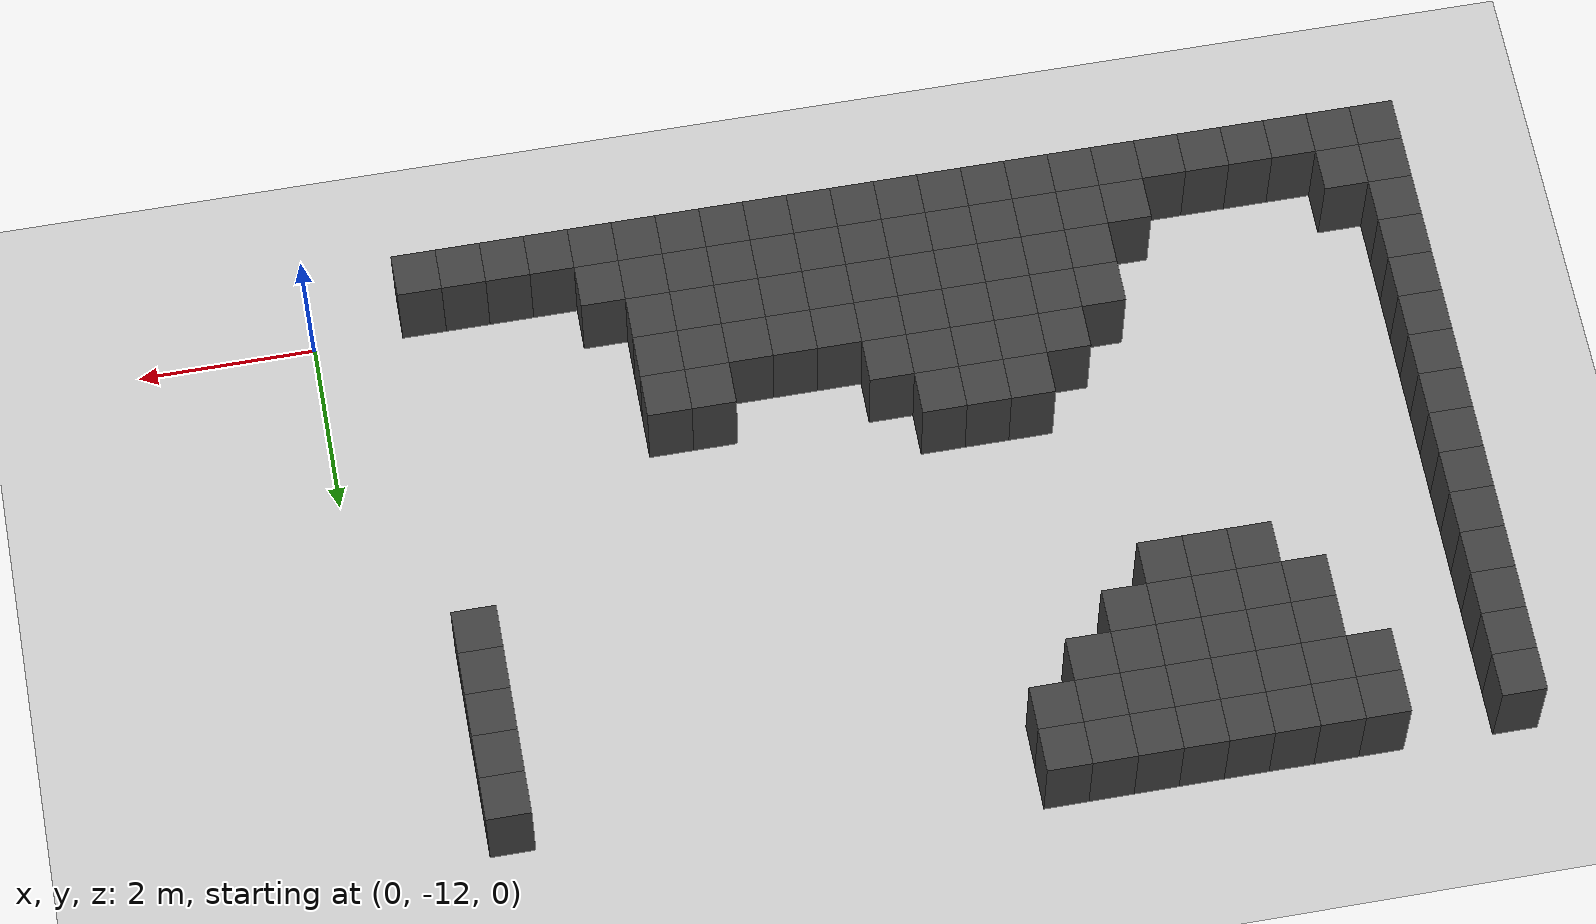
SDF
<sdf version="1.7">
 <world name="map_8074">
  <model name="ground_plane">
   <static>true</static>
   <link name="link">
    <collision name="collision">
     <geometry><plane><normal>0 0 1</normal><size>200 200</size></plane></geometry>
    </collision>
    <visual name="visual">
     <geometry><plane><normal>0 0 1</normal><size>200 200</size></plane></geometry>
     <material><ambient>0.8 0.8 0.8 1</ambient><diffuse>0.8 0.8 0.8 1</diffuse></material>
    </visual>
   </link>
  </model>
  <model name="maze_environment">
   <static>true</static>
   <link name="wall_593">
    <pose>-12.250 -5.250 0.500 0 0 0</pose>
    <collision name="col"><geometry><box><size>0.5 0.5 1.0</size></box></geometry></collision>
    <visual name="vis">
     <geometry><box><size>0.5 0.5 1.0</size></box></geometry>
     <material><ambient>0.15 0.15 0.15 1</ambient><diffuse>0.25 0.25 0.25 1</diffuse></material>
    </visual>
   </link>
   <link name="wall_594">
    <pose>-10.750 -5.250 0.500 0 0 0</pose>
    <collision name="col"><geometry><box><size>0.5 0.5 1.0</size></box></geometry></collision>
    <visual name="vis">
     <geometry><box><size>0.5 0.5 1.0</size></box></geometry>
     <material><ambient>0.15 0.15 0.15 1</ambient><diffuse>0.25 0.25 0.25 1</diffuse></material>
    </visual>
   </link>
   <link name="wall_595">
    <pose>-10.250 -5.250 0.500 0 0 0</pose>
    <collision name="col"><geometry><box><size>0.5 0.5 1.0</size></box></geometry></collision>
    <visual name="vis">
     <geometry><box><size>0.5 0.5 1.0</size></box></geometry>
     <material><ambient>0.15 0.15 0.15 1</ambient><diffuse>0.25 0.25 0.25 1</diffuse></material>
    </visual>
   </link>
   <link name="wall_596">
    <pose>-9.750 -5.250 0.500 0 0 0</pose>
    <collision name="col"><geometry><box><size>0.5 0.5 1.0</size></box></geometry></collision>
    <visual name="vis">
     <geometry><box><size>0.5 0.5 1.0</size></box></geometry>
     <material><ambient>0.15 0.15 0.15 1</ambient><diffuse>0.25 0.25 0.25 1</diffuse></material>
    </visual>
   </link>
   <link name="wall_597">
    <pose>-9.250 -5.250 0.500 0 0 0</pose>
    <collision name="col"><geometry><box><size>0.5 0.5 1.0</size></box></geometry></collision>
    <visual name="vis">
     <geometry><box><size>0.5 0.5 1.0</size></box></geometry>
     <material><ambient>0.15 0.15 0.15 1</ambient><diffuse>0.25 0.25 0.25 1</diffuse></material>
    </visual>
   </link>
   <link name="wall_598">
    <pose>-8.750 -5.250 0.500 0 0 0</pose>
    <collision name="col"><geometry><box><size>0.5 0.5 1.0</size></box></geometry></collision>
    <visual name="vis">
     <geometry><box><size>0.5 0.5 1.0</size></box></geometry>
     <material><ambient>0.15 0.15 0.15 1</ambient><diffuse>0.25 0.25 0.25 1</diffuse></material>
    </visual>
   </link>
   <link name="wall_599">
    <pose>-8.250 -5.250 0.500 0 0 0</pose>
    <collision name="col"><geometry><box><size>0.5 0.5 1.0</size></box></geometry></collision>
    <visual name="vis">
     <geometry><box><size>0.5 0.5 1.0</size></box></geometry>
     <material><ambient>0.15 0.15 0.15 1</ambient><diffuse>0.25 0.25 0.25 1</diffuse></material>
    </visual>
   </link>
   <link name="wall_600">
    <pose>-7.750 -5.250 0.500 0 0 0</pose>
    <collision name="col"><geometry><box><size>0.5 0.5 1.0</size></box></geometry></collision>
    <visual name="vis">
     <geometry><box><size>0.5 0.5 1.0</size></box></geometry>
     <material><ambient>0.15 0.15 0.15 1</ambient><diffuse>0.25 0.25 0.25 1</diffuse></material>
    </visual>
   </link>
   <link name="wall_601">
    <pose>-7.250 -5.250 0.500 0 0 0</pose>
    <collision name="col"><geometry><box><size>0.5 0.5 1.0</size></box></geometry></collision>
    <visual name="vis">
     <geometry><box><size>0.5 0.5 1.0</size></box></geometry>
     <material><ambient>0.15 0.15 0.15 1</ambient><diffuse>0.25 0.25 0.25 1</diffuse></material>
    </visual>
   </link>
   <link name="wall_610">
    <pose>-12.250 -5.750 0.500 0 0 0</pose>
    <collision name="col"><geometry><box><size>0.5 0.5 1.0</size></box></geometry></collision>
    <visual name="vis">
     <geometry><box><size>0.5 0.5 1.0</size></box></geometry>
     <material><ambient>0.15 0.15 0.15 1</ambient><diffuse>0.25 0.25 0.25 1</diffuse></material>
    </visual>
   </link>
   <link name="wall_611">
    <pose>-10.750 -5.750 0.500 0 0 0</pose>
    <collision name="col"><geometry><box><size>0.5 0.5 1.0</size></box></geometry></collision>
    <visual name="vis">
     <geometry><box><size>0.5 0.5 1.0</size></box></geometry>
     <material><ambient>0.15 0.15 0.15 1</ambient><diffuse>0.25 0.25 0.25 1</diffuse></material>
    </visual>
   </link>
   <link name="wall_612">
    <pose>-10.250 -5.750 0.500 0 0 0</pose>
    <collision name="col"><geometry><box><size>0.5 0.5 1.0</size></box></geometry></collision>
    <visual name="vis">
     <geometry><box><size>0.5 0.5 1.0</size></box></geometry>
     <material><ambient>0.15 0.15 0.15 1</ambient><diffuse>0.25 0.25 0.25 1</diffuse></material>
    </visual>
   </link>
   <link name="wall_613">
    <pose>-9.750 -5.750 0.500 0 0 0</pose>
    <collision name="col"><geometry><box><size>0.5 0.5 1.0</size></box></geometry></collision>
    <visual name="vis">
     <geometry><box><size>0.5 0.5 1.0</size></box></geometry>
     <material><ambient>0.15 0.15 0.15 1</ambient><diffuse>0.25 0.25 0.25 1</diffuse></material>
    </visual>
   </link>
   <link name="wall_614">
    <pose>-9.250 -5.750 0.500 0 0 0</pose>
    <collision name="col"><geometry><box><size>0.5 0.5 1.0</size></box></geometry></collision>
    <visual name="vis">
     <geometry><box><size>0.5 0.5 1.0</size></box></geometry>
     <material><ambient>0.15 0.15 0.15 1</ambient><diffuse>0.25 0.25 0.25 1</diffuse></material>
    </visual>
   </link>
   <link name="wall_615">
    <pose>-8.750 -5.750 0.500 0 0 0</pose>
    <collision name="col"><geometry><box><size>0.5 0.5 1.0</size></box></geometry></collision>
    <visual name="vis">
     <geometry><box><size>0.5 0.5 1.0</size></box></geometry>
     <material><ambient>0.15 0.15 0.15 1</ambient><diffuse>0.25 0.25 0.25 1</diffuse></material>
    </visual>
   </link>
   <link name="wall_616">
    <pose>-8.250 -5.750 0.500 0 0 0</pose>
    <collision name="col"><geometry><box><size>0.5 0.5 1.0</size></box></geometry></collision>
    <visual name="vis">
     <geometry><box><size>0.5 0.5 1.0</size></box></geometry>
     <material><ambient>0.15 0.15 0.15 1</ambient><diffuse>0.25 0.25 0.25 1</diffuse></material>
    </visual>
   </link>
   <link name="wall_617">
    <pose>-7.750 -5.750 0.500 0 0 0</pose>
    <collision name="col"><geometry><box><size>0.5 0.5 1.0</size></box></geometry></collision>
    <visual name="vis">
     <geometry><box><size>0.5 0.5 1.0</size></box></geometry>
     <material><ambient>0.15 0.15 0.15 1</ambient><diffuse>0.25 0.25 0.25 1</diffuse></material>
    </visual>
   </link>
   <link name="wall_618">
    <pose>-7.250 -5.750 0.500 0 0 0</pose>
    <collision name="col"><geometry><box><size>0.5 0.5 1.0</size></box></geometry></collision>
    <visual name="vis">
     <geometry><box><size>0.5 0.5 1.0</size></box></geometry>
     <material><ambient>0.15 0.15 0.15 1</ambient><diffuse>0.25 0.25 0.25 1</diffuse></material>
    </visual>
   </link>
   <link name="wall_619">
    <pose>-1.250 -5.750 0.500 0 0 0</pose>
    <collision name="col"><geometry><box><size>0.5 0.5 1.0</size></box></geometry></collision>
    <visual name="vis">
     <geometry><box><size>0.5 0.5 1.0</size></box></geometry>
     <material><ambient>0.15 0.15 0.15 1</ambient><diffuse>0.25 0.25 0.25 1</diffuse></material>
    </visual>
   </link>
   <link name="wall_627">
    <pose>-12.250 -6.250 0.500 0 0 0</pose>
    <collision name="col"><geometry><box><size>0.5 0.5 1.0</size></box></geometry></collision>
    <visual name="vis">
     <geometry><box><size>0.5 0.5 1.0</size></box></geometry>
     <material><ambient>0.15 0.15 0.15 1</ambient><diffuse>0.25 0.25 0.25 1</diffuse></material>
    </visual>
   </link>
   <link name="wall_628">
    <pose>-10.250 -6.250 0.500 0 0 0</pose>
    <collision name="col"><geometry><box><size>0.5 0.5 1.0</size></box></geometry></collision>
    <visual name="vis">
     <geometry><box><size>0.5 0.5 1.0</size></box></geometry>
     <material><ambient>0.15 0.15 0.15 1</ambient><diffuse>0.25 0.25 0.25 1</diffuse></material>
    </visual>
   </link>
   <link name="wall_629">
    <pose>-9.750 -6.250 0.500 0 0 0</pose>
    <collision name="col"><geometry><box><size>0.5 0.5 1.0</size></box></geometry></collision>
    <visual name="vis">
     <geometry><box><size>0.5 0.5 1.0</size></box></geometry>
     <material><ambient>0.15 0.15 0.15 1</ambient><diffuse>0.25 0.25 0.25 1</diffuse></material>
    </visual>
   </link>
   <link name="wall_630">
    <pose>-9.250 -6.250 0.500 0 0 0</pose>
    <collision name="col"><geometry><box><size>0.5 0.5 1.0</size></box></geometry></collision>
    <visual name="vis">
     <geometry><box><size>0.5 0.5 1.0</size></box></geometry>
     <material><ambient>0.15 0.15 0.15 1</ambient><diffuse>0.25 0.25 0.25 1</diffuse></material>
    </visual>
   </link>
   <link name="wall_631">
    <pose>-8.750 -6.250 0.500 0 0 0</pose>
    <collision name="col"><geometry><box><size>0.5 0.5 1.0</size></box></geometry></collision>
    <visual name="vis">
     <geometry><box><size>0.5 0.5 1.0</size></box></geometry>
     <material><ambient>0.15 0.15 0.15 1</ambient><diffuse>0.25 0.25 0.25 1</diffuse></material>
    </visual>
   </link>
   <link name="wall_632">
    <pose>-8.250 -6.250 0.500 0 0 0</pose>
    <collision name="col"><geometry><box><size>0.5 0.5 1.0</size></box></geometry></collision>
    <visual name="vis">
     <geometry><box><size>0.5 0.5 1.0</size></box></geometry>
     <material><ambient>0.15 0.15 0.15 1</ambient><diffuse>0.25 0.25 0.25 1</diffuse></material>
    </visual>
   </link>
   <link name="wall_633">
    <pose>-7.750 -6.250 0.500 0 0 0</pose>
    <collision name="col"><geometry><box><size>0.5 0.5 1.0</size></box></geometry></collision>
    <visual name="vis">
     <geometry><box><size>0.5 0.5 1.0</size></box></geometry>
     <material><ambient>0.15 0.15 0.15 1</ambient><diffuse>0.25 0.25 0.25 1</diffuse></material>
    </visual>
   </link>
   <link name="wall_634">
    <pose>-1.250 -6.250 0.500 0 0 0</pose>
    <collision name="col"><geometry><box><size>0.5 0.5 1.0</size></box></geometry></collision>
    <visual name="vis">
     <geometry><box><size>0.5 0.5 1.0</size></box></geometry>
     <material><ambient>0.15 0.15 0.15 1</ambient><diffuse>0.25 0.25 0.25 1</diffuse></material>
    </visual>
   </link>
   <link name="wall_641">
    <pose>-12.250 -6.750 0.500 0 0 0</pose>
    <collision name="col"><geometry><box><size>0.5 0.5 1.0</size></box></geometry></collision>
    <visual name="vis">
     <geometry><box><size>0.5 0.5 1.0</size></box></geometry>
     <material><ambient>0.15 0.15 0.15 1</ambient><diffuse>0.25 0.25 0.25 1</diffuse></material>
    </visual>
   </link>
   <link name="wall_642">
    <pose>-10.250 -6.750 0.500 0 0 0</pose>
    <collision name="col"><geometry><box><size>0.5 0.5 1.0</size></box></geometry></collision>
    <visual name="vis">
     <geometry><box><size>0.5 0.5 1.0</size></box></geometry>
     <material><ambient>0.15 0.15 0.15 1</ambient><diffuse>0.25 0.25 0.25 1</diffuse></material>
    </visual>
   </link>
   <link name="wall_643">
    <pose>-9.750 -6.750 0.500 0 0 0</pose>
    <collision name="col"><geometry><box><size>0.5 0.5 1.0</size></box></geometry></collision>
    <visual name="vis">
     <geometry><box><size>0.5 0.5 1.0</size></box></geometry>
     <material><ambient>0.15 0.15 0.15 1</ambient><diffuse>0.25 0.25 0.25 1</diffuse></material>
    </visual>
   </link>
   <link name="wall_644">
    <pose>-9.250 -6.750 0.500 0 0 0</pose>
    <collision name="col"><geometry><box><size>0.5 0.5 1.0</size></box></geometry></collision>
    <visual name="vis">
     <geometry><box><size>0.5 0.5 1.0</size></box></geometry>
     <material><ambient>0.15 0.15 0.15 1</ambient><diffuse>0.25 0.25 0.25 1</diffuse></material>
    </visual>
   </link>
   <link name="wall_645">
    <pose>-8.750 -6.750 0.500 0 0 0</pose>
    <collision name="col"><geometry><box><size>0.5 0.5 1.0</size></box></geometry></collision>
    <visual name="vis">
     <geometry><box><size>0.5 0.5 1.0</size></box></geometry>
     <material><ambient>0.15 0.15 0.15 1</ambient><diffuse>0.25 0.25 0.25 1</diffuse></material>
    </visual>
   </link>
   <link name="wall_646">
    <pose>-8.250 -6.750 0.500 0 0 0</pose>
    <collision name="col"><geometry><box><size>0.5 0.5 1.0</size></box></geometry></collision>
    <visual name="vis">
     <geometry><box><size>0.5 0.5 1.0</size></box></geometry>
     <material><ambient>0.15 0.15 0.15 1</ambient><diffuse>0.25 0.25 0.25 1</diffuse></material>
    </visual>
   </link>
   <link name="wall_647">
    <pose>-1.250 -6.750 0.500 0 0 0</pose>
    <collision name="col"><geometry><box><size>0.5 0.5 1.0</size></box></geometry></collision>
    <visual name="vis">
     <geometry><box><size>0.5 0.5 1.0</size></box></geometry>
     <material><ambient>0.15 0.15 0.15 1</ambient><diffuse>0.25 0.25 0.25 1</diffuse></material>
    </visual>
   </link>
   <link name="wall_655">
    <pose>-12.250 -7.250 0.500 0 0 0</pose>
    <collision name="col"><geometry><box><size>0.5 0.5 1.0</size></box></geometry></collision>
    <visual name="vis">
     <geometry><box><size>0.5 0.5 1.0</size></box></geometry>
     <material><ambient>0.15 0.15 0.15 1</ambient><diffuse>0.25 0.25 0.25 1</diffuse></material>
    </visual>
   </link>
   <link name="wall_656">
    <pose>-9.750 -7.250 0.500 0 0 0</pose>
    <collision name="col"><geometry><box><size>0.5 0.5 1.0</size></box></geometry></collision>
    <visual name="vis">
     <geometry><box><size>0.5 0.5 1.0</size></box></geometry>
     <material><ambient>0.15 0.15 0.15 1</ambient><diffuse>0.25 0.25 0.25 1</diffuse></material>
    </visual>
   </link>
   <link name="wall_657">
    <pose>-9.250 -7.250 0.500 0 0 0</pose>
    <collision name="col"><geometry><box><size>0.5 0.5 1.0</size></box></geometry></collision>
    <visual name="vis">
     <geometry><box><size>0.5 0.5 1.0</size></box></geometry>
     <material><ambient>0.15 0.15 0.15 1</ambient><diffuse>0.25 0.25 0.25 1</diffuse></material>
    </visual>
   </link>
   <link name="wall_658">
    <pose>-8.750 -7.250 0.500 0 0 0</pose>
    <collision name="col"><geometry><box><size>0.5 0.5 1.0</size></box></geometry></collision>
    <visual name="vis">
     <geometry><box><size>0.5 0.5 1.0</size></box></geometry>
     <material><ambient>0.15 0.15 0.15 1</ambient><diffuse>0.25 0.25 0.25 1</diffuse></material>
    </visual>
   </link>
   <link name="wall_659">
    <pose>-1.250 -7.250 0.500 0 0 0</pose>
    <collision name="col"><geometry><box><size>0.5 0.5 1.0</size></box></geometry></collision>
    <visual name="vis">
     <geometry><box><size>0.5 0.5 1.0</size></box></geometry>
     <material><ambient>0.15 0.15 0.15 1</ambient><diffuse>0.25 0.25 0.25 1</diffuse></material>
    </visual>
   </link>
   <link name="wall_667">
    <pose>-12.250 -7.750 0.500 0 0 0</pose>
    <collision name="col"><geometry><box><size>0.5 0.5 1.0</size></box></geometry></collision>
    <visual name="vis">
     <geometry><box><size>0.5 0.5 1.0</size></box></geometry>
     <material><ambient>0.15 0.15 0.15 1</ambient><diffuse>0.25 0.25 0.25 1</diffuse></material>
    </visual>
   </link>
   <link name="wall_668">
    <pose>-1.250 -7.750 0.500 0 0 0</pose>
    <collision name="col"><geometry><box><size>0.5 0.5 1.0</size></box></geometry></collision>
    <visual name="vis">
     <geometry><box><size>0.5 0.5 1.0</size></box></geometry>
     <material><ambient>0.15 0.15 0.15 1</ambient><diffuse>0.25 0.25 0.25 1</diffuse></material>
    </visual>
   </link>
   <link name="wall_676">
    <pose>-12.250 -8.250 0.500 0 0 0</pose>
    <collision name="col"><geometry><box><size>0.5 0.5 1.0</size></box></geometry></collision>
    <visual name="vis">
     <geometry><box><size>0.5 0.5 1.0</size></box></geometry>
     <material><ambient>0.15 0.15 0.15 1</ambient><diffuse>0.25 0.25 0.25 1</diffuse></material>
    </visual>
   </link>
   <link name="wall_684">
    <pose>-12.250 -8.750 0.500 0 0 0</pose>
    <collision name="col"><geometry><box><size>0.5 0.5 1.0</size></box></geometry></collision>
    <visual name="vis">
     <geometry><box><size>0.5 0.5 1.0</size></box></geometry>
     <material><ambient>0.15 0.15 0.15 1</ambient><diffuse>0.25 0.25 0.25 1</diffuse></material>
    </visual>
   </link>
   <link name="wall_692">
    <pose>-12.250 -9.250 0.500 0 0 0</pose>
    <collision name="col"><geometry><box><size>0.5 0.5 1.0</size></box></geometry></collision>
    <visual name="vis">
     <geometry><box><size>0.5 0.5 1.0</size></box></geometry>
     <material><ambient>0.15 0.15 0.15 1</ambient><diffuse>0.25 0.25 0.25 1</diffuse></material>
    </visual>
   </link>
   <link name="wall_701">
    <pose>-12.250 -9.750 0.500 0 0 0</pose>
    <collision name="col"><geometry><box><size>0.5 0.5 1.0</size></box></geometry></collision>
    <visual name="vis">
     <geometry><box><size>0.5 0.5 1.0</size></box></geometry>
     <material><ambient>0.15 0.15 0.15 1</ambient><diffuse>0.25 0.25 0.25 1</diffuse></material>
    </visual>
   </link>
   <link name="wall_702">
    <pose>-7.750 -9.750 0.500 0 0 0</pose>
    <collision name="col"><geometry><box><size>0.5 0.5 1.0</size></box></geometry></collision>
    <visual name="vis">
     <geometry><box><size>0.5 0.5 1.0</size></box></geometry>
     <material><ambient>0.15 0.15 0.15 1</ambient><diffuse>0.25 0.25 0.25 1</diffuse></material>
    </visual>
   </link>
   <link name="wall_703">
    <pose>-7.250 -9.750 0.500 0 0 0</pose>
    <collision name="col"><geometry><box><size>0.5 0.5 1.0</size></box></geometry></collision>
    <visual name="vis">
     <geometry><box><size>0.5 0.5 1.0</size></box></geometry>
     <material><ambient>0.15 0.15 0.15 1</ambient><diffuse>0.25 0.25 0.25 1</diffuse></material>
    </visual>
   </link>
   <link name="wall_704">
    <pose>-6.750 -9.750 0.500 0 0 0</pose>
    <collision name="col"><geometry><box><size>0.5 0.5 1.0</size></box></geometry></collision>
    <visual name="vis">
     <geometry><box><size>0.5 0.5 1.0</size></box></geometry>
     <material><ambient>0.15 0.15 0.15 1</ambient><diffuse>0.25 0.25 0.25 1</diffuse></material>
    </visual>
   </link>
   <link name="wall_712">
    <pose>-12.250 -10.250 0.500 0 0 0</pose>
    <collision name="col"><geometry><box><size>0.5 0.5 1.0</size></box></geometry></collision>
    <visual name="vis">
     <geometry><box><size>0.5 0.5 1.0</size></box></geometry>
     <material><ambient>0.15 0.15 0.15 1</ambient><diffuse>0.25 0.25 0.25 1</diffuse></material>
    </visual>
   </link>
   <link name="wall_713">
    <pose>-8.250 -10.250 0.500 0 0 0</pose>
    <collision name="col"><geometry><box><size>0.5 0.5 1.0</size></box></geometry></collision>
    <visual name="vis">
     <geometry><box><size>0.5 0.5 1.0</size></box></geometry>
     <material><ambient>0.15 0.15 0.15 1</ambient><diffuse>0.25 0.25 0.25 1</diffuse></material>
    </visual>
   </link>
   <link name="wall_714">
    <pose>-7.750 -10.250 0.500 0 0 0</pose>
    <collision name="col"><geometry><box><size>0.5 0.5 1.0</size></box></geometry></collision>
    <visual name="vis">
     <geometry><box><size>0.5 0.5 1.0</size></box></geometry>
     <material><ambient>0.15 0.15 0.15 1</ambient><diffuse>0.25 0.25 0.25 1</diffuse></material>
    </visual>
   </link>
   <link name="wall_715">
    <pose>-7.250 -10.250 0.500 0 0 0</pose>
    <collision name="col"><geometry><box><size>0.5 0.5 1.0</size></box></geometry></collision>
    <visual name="vis">
     <geometry><box><size>0.5 0.5 1.0</size></box></geometry>
     <material><ambient>0.15 0.15 0.15 1</ambient><diffuse>0.25 0.25 0.25 1</diffuse></material>
    </visual>
   </link>
   <link name="wall_716">
    <pose>-6.750 -10.250 0.500 0 0 0</pose>
    <collision name="col"><geometry><box><size>0.5 0.5 1.0</size></box></geometry></collision>
    <visual name="vis">
     <geometry><box><size>0.5 0.5 1.0</size></box></geometry>
     <material><ambient>0.15 0.15 0.15 1</ambient><diffuse>0.25 0.25 0.25 1</diffuse></material>
    </visual>
   </link>
   <link name="wall_717">
    <pose>-6.250 -10.250 0.500 0 0 0</pose>
    <collision name="col"><geometry><box><size>0.5 0.5 1.0</size></box></geometry></collision>
    <visual name="vis">
     <geometry><box><size>0.5 0.5 1.0</size></box></geometry>
     <material><ambient>0.15 0.15 0.15 1</ambient><diffuse>0.25 0.25 0.25 1</diffuse></material>
    </visual>
   </link>
   <link name="wall_718">
    <pose>-4.250 -10.250 0.500 0 0 0</pose>
    <collision name="col"><geometry><box><size>0.5 0.5 1.0</size></box></geometry></collision>
    <visual name="vis">
     <geometry><box><size>0.5 0.5 1.0</size></box></geometry>
     <material><ambient>0.15 0.15 0.15 1</ambient><diffuse>0.25 0.25 0.25 1</diffuse></material>
    </visual>
   </link>
   <link name="wall_719">
    <pose>-3.750 -10.250 0.500 0 0 0</pose>
    <collision name="col"><geometry><box><size>0.5 0.5 1.0</size></box></geometry></collision>
    <visual name="vis">
     <geometry><box><size>0.5 0.5 1.0</size></box></geometry>
     <material><ambient>0.15 0.15 0.15 1</ambient><diffuse>0.25 0.25 0.25 1</diffuse></material>
    </visual>
   </link>
   <link name="wall_724">
    <pose>-12.250 -10.750 0.500 0 0 0</pose>
    <collision name="col"><geometry><box><size>0.5 0.5 1.0</size></box></geometry></collision>
    <visual name="vis">
     <geometry><box><size>0.5 0.5 1.0</size></box></geometry>
     <material><ambient>0.15 0.15 0.15 1</ambient><diffuse>0.25 0.25 0.25 1</diffuse></material>
    </visual>
   </link>
   <link name="wall_725">
    <pose>-8.750 -10.750 0.500 0 0 0</pose>
    <collision name="col"><geometry><box><size>0.5 0.5 1.0</size></box></geometry></collision>
    <visual name="vis">
     <geometry><box><size>0.5 0.5 1.0</size></box></geometry>
     <material><ambient>0.15 0.15 0.15 1</ambient><diffuse>0.25 0.25 0.25 1</diffuse></material>
    </visual>
   </link>
   <link name="wall_726">
    <pose>-8.250 -10.750 0.500 0 0 0</pose>
    <collision name="col"><geometry><box><size>0.5 0.5 1.0</size></box></geometry></collision>
    <visual name="vis">
     <geometry><box><size>0.5 0.5 1.0</size></box></geometry>
     <material><ambient>0.15 0.15 0.15 1</ambient><diffuse>0.25 0.25 0.25 1</diffuse></material>
    </visual>
   </link>
   <link name="wall_727">
    <pose>-7.750 -10.750 0.500 0 0 0</pose>
    <collision name="col"><geometry><box><size>0.5 0.5 1.0</size></box></geometry></collision>
    <visual name="vis">
     <geometry><box><size>0.5 0.5 1.0</size></box></geometry>
     <material><ambient>0.15 0.15 0.15 1</ambient><diffuse>0.25 0.25 0.25 1</diffuse></material>
    </visual>
   </link>
   <link name="wall_728">
    <pose>-7.250 -10.750 0.500 0 0 0</pose>
    <collision name="col"><geometry><box><size>0.5 0.5 1.0</size></box></geometry></collision>
    <visual name="vis">
     <geometry><box><size>0.5 0.5 1.0</size></box></geometry>
     <material><ambient>0.15 0.15 0.15 1</ambient><diffuse>0.25 0.25 0.25 1</diffuse></material>
    </visual>
   </link>
   <link name="wall_729">
    <pose>-6.750 -10.750 0.500 0 0 0</pose>
    <collision name="col"><geometry><box><size>0.5 0.5 1.0</size></box></geometry></collision>
    <visual name="vis">
     <geometry><box><size>0.5 0.5 1.0</size></box></geometry>
     <material><ambient>0.15 0.15 0.15 1</ambient><diffuse>0.25 0.25 0.25 1</diffuse></material>
    </visual>
   </link>
   <link name="wall_730">
    <pose>-6.250 -10.750 0.500 0 0 0</pose>
    <collision name="col"><geometry><box><size>0.5 0.5 1.0</size></box></geometry></collision>
    <visual name="vis">
     <geometry><box><size>0.5 0.5 1.0</size></box></geometry>
     <material><ambient>0.15 0.15 0.15 1</ambient><diffuse>0.25 0.25 0.25 1</diffuse></material>
    </visual>
   </link>
   <link name="wall_731">
    <pose>-5.750 -10.750 0.500 0 0 0</pose>
    <collision name="col"><geometry><box><size>0.5 0.5 1.0</size></box></geometry></collision>
    <visual name="vis">
     <geometry><box><size>0.5 0.5 1.0</size></box></geometry>
     <material><ambient>0.15 0.15 0.15 1</ambient><diffuse>0.25 0.25 0.25 1</diffuse></material>
    </visual>
   </link>
   <link name="wall_732">
    <pose>-5.250 -10.750 0.500 0 0 0</pose>
    <collision name="col"><geometry><box><size>0.5 0.5 1.0</size></box></geometry></collision>
    <visual name="vis">
     <geometry><box><size>0.5 0.5 1.0</size></box></geometry>
     <material><ambient>0.15 0.15 0.15 1</ambient><diffuse>0.25 0.25 0.25 1</diffuse></material>
    </visual>
   </link>
   <link name="wall_733">
    <pose>-4.750 -10.750 0.500 0 0 0</pose>
    <collision name="col"><geometry><box><size>0.5 0.5 1.0</size></box></geometry></collision>
    <visual name="vis">
     <geometry><box><size>0.5 0.5 1.0</size></box></geometry>
     <material><ambient>0.15 0.15 0.15 1</ambient><diffuse>0.25 0.25 0.25 1</diffuse></material>
    </visual>
   </link>
   <link name="wall_734">
    <pose>-4.250 -10.750 0.500 0 0 0</pose>
    <collision name="col"><geometry><box><size>0.5 0.5 1.0</size></box></geometry></collision>
    <visual name="vis">
     <geometry><box><size>0.5 0.5 1.0</size></box></geometry>
     <material><ambient>0.15 0.15 0.15 1</ambient><diffuse>0.25 0.25 0.25 1</diffuse></material>
    </visual>
   </link>
   <link name="wall_735">
    <pose>-3.750 -10.750 0.500 0 0 0</pose>
    <collision name="col"><geometry><box><size>0.5 0.5 1.0</size></box></geometry></collision>
    <visual name="vis">
     <geometry><box><size>0.5 0.5 1.0</size></box></geometry>
     <material><ambient>0.15 0.15 0.15 1</ambient><diffuse>0.25 0.25 0.25 1</diffuse></material>
    </visual>
   </link>
   <link name="wall_740">
    <pose>-12.250 -11.250 0.500 0 0 0</pose>
    <collision name="col"><geometry><box><size>0.5 0.5 1.0</size></box></geometry></collision>
    <visual name="vis">
     <geometry><box><size>0.5 0.5 1.0</size></box></geometry>
     <material><ambient>0.15 0.15 0.15 1</ambient><diffuse>0.25 0.25 0.25 1</diffuse></material>
    </visual>
   </link>
   <link name="wall_741">
    <pose>-8.750 -11.250 0.500 0 0 0</pose>
    <collision name="col"><geometry><box><size>0.5 0.5 1.0</size></box></geometry></collision>
    <visual name="vis">
     <geometry><box><size>0.5 0.5 1.0</size></box></geometry>
     <material><ambient>0.15 0.15 0.15 1</ambient><diffuse>0.25 0.25 0.25 1</diffuse></material>
    </visual>
   </link>
   <link name="wall_742">
    <pose>-8.250 -11.250 0.500 0 0 0</pose>
    <collision name="col"><geometry><box><size>0.5 0.5 1.0</size></box></geometry></collision>
    <visual name="vis">
     <geometry><box><size>0.5 0.5 1.0</size></box></geometry>
     <material><ambient>0.15 0.15 0.15 1</ambient><diffuse>0.25 0.25 0.25 1</diffuse></material>
    </visual>
   </link>
   <link name="wall_743">
    <pose>-7.750 -11.250 0.500 0 0 0</pose>
    <collision name="col"><geometry><box><size>0.5 0.5 1.0</size></box></geometry></collision>
    <visual name="vis">
     <geometry><box><size>0.5 0.5 1.0</size></box></geometry>
     <material><ambient>0.15 0.15 0.15 1</ambient><diffuse>0.25 0.25 0.25 1</diffuse></material>
    </visual>
   </link>
   <link name="wall_744">
    <pose>-7.250 -11.250 0.500 0 0 0</pose>
    <collision name="col"><geometry><box><size>0.5 0.5 1.0</size></box></geometry></collision>
    <visual name="vis">
     <geometry><box><size>0.5 0.5 1.0</size></box></geometry>
     <material><ambient>0.15 0.15 0.15 1</ambient><diffuse>0.25 0.25 0.25 1</diffuse></material>
    </visual>
   </link>
   <link name="wall_745">
    <pose>-6.750 -11.250 0.500 0 0 0</pose>
    <collision name="col"><geometry><box><size>0.5 0.5 1.0</size></box></geometry></collision>
    <visual name="vis">
     <geometry><box><size>0.5 0.5 1.0</size></box></geometry>
     <material><ambient>0.15 0.15 0.15 1</ambient><diffuse>0.25 0.25 0.25 1</diffuse></material>
    </visual>
   </link>
   <link name="wall_746">
    <pose>-6.250 -11.250 0.500 0 0 0</pose>
    <collision name="col"><geometry><box><size>0.5 0.5 1.0</size></box></geometry></collision>
    <visual name="vis">
     <geometry><box><size>0.5 0.5 1.0</size></box></geometry>
     <material><ambient>0.15 0.15 0.15 1</ambient><diffuse>0.25 0.25 0.25 1</diffuse></material>
    </visual>
   </link>
   <link name="wall_747">
    <pose>-5.750 -11.250 0.500 0 0 0</pose>
    <collision name="col"><geometry><box><size>0.5 0.5 1.0</size></box></geometry></collision>
    <visual name="vis">
     <geometry><box><size>0.5 0.5 1.0</size></box></geometry>
     <material><ambient>0.15 0.15 0.15 1</ambient><diffuse>0.25 0.25 0.25 1</diffuse></material>
    </visual>
   </link>
   <link name="wall_748">
    <pose>-5.250 -11.250 0.500 0 0 0</pose>
    <collision name="col"><geometry><box><size>0.5 0.5 1.0</size></box></geometry></collision>
    <visual name="vis">
     <geometry><box><size>0.5 0.5 1.0</size></box></geometry>
     <material><ambient>0.15 0.15 0.15 1</ambient><diffuse>0.25 0.25 0.25 1</diffuse></material>
    </visual>
   </link>
   <link name="wall_749">
    <pose>-4.750 -11.250 0.500 0 0 0</pose>
    <collision name="col"><geometry><box><size>0.5 0.5 1.0</size></box></geometry></collision>
    <visual name="vis">
     <geometry><box><size>0.5 0.5 1.0</size></box></geometry>
     <material><ambient>0.15 0.15 0.15 1</ambient><diffuse>0.25 0.25 0.25 1</diffuse></material>
    </visual>
   </link>
   <link name="wall_750">
    <pose>-4.250 -11.250 0.500 0 0 0</pose>
    <collision name="col"><geometry><box><size>0.5 0.5 1.0</size></box></geometry></collision>
    <visual name="vis">
     <geometry><box><size>0.5 0.5 1.0</size></box></geometry>
     <material><ambient>0.15 0.15 0.15 1</ambient><diffuse>0.25 0.25 0.25 1</diffuse></material>
    </visual>
   </link>
   <link name="wall_751">
    <pose>-3.750 -11.250 0.500 0 0 0</pose>
    <collision name="col"><geometry><box><size>0.5 0.5 1.0</size></box></geometry></collision>
    <visual name="vis">
     <geometry><box><size>0.5 0.5 1.0</size></box></geometry>
     <material><ambient>0.15 0.15 0.15 1</ambient><diffuse>0.25 0.25 0.25 1</diffuse></material>
    </visual>
   </link>
   <link name="wall_756">
    <pose>-12.250 -11.750 0.500 0 0 0</pose>
    <collision name="col"><geometry><box><size>0.5 0.5 1.0</size></box></geometry></collision>
    <visual name="vis">
     <geometry><box><size>0.5 0.5 1.0</size></box></geometry>
     <material><ambient>0.15 0.15 0.15 1</ambient><diffuse>0.25 0.25 0.25 1</diffuse></material>
    </visual>
   </link>
   <link name="wall_757">
    <pose>-11.750 -11.750 0.500 0 0 0</pose>
    <collision name="col"><geometry><box><size>0.5 0.5 1.0</size></box></geometry></collision>
    <visual name="vis">
     <geometry><box><size>0.5 0.5 1.0</size></box></geometry>
     <material><ambient>0.15 0.15 0.15 1</ambient><diffuse>0.25 0.25 0.25 1</diffuse></material>
    </visual>
   </link>
   <link name="wall_758">
    <pose>-9.250 -11.750 0.500 0 0 0</pose>
    <collision name="col"><geometry><box><size>0.5 0.5 1.0</size></box></geometry></collision>
    <visual name="vis">
     <geometry><box><size>0.5 0.5 1.0</size></box></geometry>
     <material><ambient>0.15 0.15 0.15 1</ambient><diffuse>0.25 0.25 0.25 1</diffuse></material>
    </visual>
   </link>
   <link name="wall_759">
    <pose>-8.750 -11.750 0.500 0 0 0</pose>
    <collision name="col"><geometry><box><size>0.5 0.5 1.0</size></box></geometry></collision>
    <visual name="vis">
     <geometry><box><size>0.5 0.5 1.0</size></box></geometry>
     <material><ambient>0.15 0.15 0.15 1</ambient><diffuse>0.25 0.25 0.25 1</diffuse></material>
    </visual>
   </link>
   <link name="wall_760">
    <pose>-8.250 -11.750 0.500 0 0 0</pose>
    <collision name="col"><geometry><box><size>0.5 0.5 1.0</size></box></geometry></collision>
    <visual name="vis">
     <geometry><box><size>0.5 0.5 1.0</size></box></geometry>
     <material><ambient>0.15 0.15 0.15 1</ambient><diffuse>0.25 0.25 0.25 1</diffuse></material>
    </visual>
   </link>
   <link name="wall_761">
    <pose>-7.750 -11.750 0.500 0 0 0</pose>
    <collision name="col"><geometry><box><size>0.5 0.5 1.0</size></box></geometry></collision>
    <visual name="vis">
     <geometry><box><size>0.5 0.5 1.0</size></box></geometry>
     <material><ambient>0.15 0.15 0.15 1</ambient><diffuse>0.25 0.25 0.25 1</diffuse></material>
    </visual>
   </link>
   <link name="wall_762">
    <pose>-7.250 -11.750 0.500 0 0 0</pose>
    <collision name="col"><geometry><box><size>0.5 0.5 1.0</size></box></geometry></collision>
    <visual name="vis">
     <geometry><box><size>0.5 0.5 1.0</size></box></geometry>
     <material><ambient>0.15 0.15 0.15 1</ambient><diffuse>0.25 0.25 0.25 1</diffuse></material>
    </visual>
   </link>
   <link name="wall_763">
    <pose>-6.750 -11.750 0.500 0 0 0</pose>
    <collision name="col"><geometry><box><size>0.5 0.5 1.0</size></box></geometry></collision>
    <visual name="vis">
     <geometry><box><size>0.5 0.5 1.0</size></box></geometry>
     <material><ambient>0.15 0.15 0.15 1</ambient><diffuse>0.25 0.25 0.25 1</diffuse></material>
    </visual>
   </link>
   <link name="wall_764">
    <pose>-6.250 -11.750 0.500 0 0 0</pose>
    <collision name="col"><geometry><box><size>0.5 0.5 1.0</size></box></geometry></collision>
    <visual name="vis">
     <geometry><box><size>0.5 0.5 1.0</size></box></geometry>
     <material><ambient>0.15 0.15 0.15 1</ambient><diffuse>0.25 0.25 0.25 1</diffuse></material>
    </visual>
   </link>
   <link name="wall_765">
    <pose>-5.750 -11.750 0.500 0 0 0</pose>
    <collision name="col"><geometry><box><size>0.5 0.5 1.0</size></box></geometry></collision>
    <visual name="vis">
     <geometry><box><size>0.5 0.5 1.0</size></box></geometry>
     <material><ambient>0.15 0.15 0.15 1</ambient><diffuse>0.25 0.25 0.25 1</diffuse></material>
    </visual>
   </link>
   <link name="wall_766">
    <pose>-5.250 -11.750 0.500 0 0 0</pose>
    <collision name="col"><geometry><box><size>0.5 0.5 1.0</size></box></geometry></collision>
    <visual name="vis">
     <geometry><box><size>0.5 0.5 1.0</size></box></geometry>
     <material><ambient>0.15 0.15 0.15 1</ambient><diffuse>0.25 0.25 0.25 1</diffuse></material>
    </visual>
   </link>
   <link name="wall_767">
    <pose>-4.750 -11.750 0.500 0 0 0</pose>
    <collision name="col"><geometry><box><size>0.5 0.5 1.0</size></box></geometry></collision>
    <visual name="vis">
     <geometry><box><size>0.5 0.5 1.0</size></box></geometry>
     <material><ambient>0.15 0.15 0.15 1</ambient><diffuse>0.25 0.25 0.25 1</diffuse></material>
    </visual>
   </link>
   <link name="wall_768">
    <pose>-4.250 -11.750 0.500 0 0 0</pose>
    <collision name="col"><geometry><box><size>0.5 0.5 1.0</size></box></geometry></collision>
    <visual name="vis">
     <geometry><box><size>0.5 0.5 1.0</size></box></geometry>
     <material><ambient>0.15 0.15 0.15 1</ambient><diffuse>0.25 0.25 0.25 1</diffuse></material>
    </visual>
   </link>
   <link name="wall_769">
    <pose>-3.750 -11.750 0.500 0 0 0</pose>
    <collision name="col"><geometry><box><size>0.5 0.5 1.0</size></box></geometry></collision>
    <visual name="vis">
     <geometry><box><size>0.5 0.5 1.0</size></box></geometry>
     <material><ambient>0.15 0.15 0.15 1</ambient><diffuse>0.25 0.25 0.25 1</diffuse></material>
    </visual>
   </link>
   <link name="wall_770">
    <pose>-3.250 -11.750 0.500 0 0 0</pose>
    <collision name="col"><geometry><box><size>0.5 0.5 1.0</size></box></geometry></collision>
    <visual name="vis">
     <geometry><box><size>0.5 0.5 1.0</size></box></geometry>
     <material><ambient>0.15 0.15 0.15 1</ambient><diffuse>0.25 0.25 0.25 1</diffuse></material>
    </visual>
   </link>
   <link name="wall_777">
    <pose>-12.250 -12.250 0.500 0 0 0</pose>
    <collision name="col"><geometry><box><size>0.5 0.5 1.0</size></box></geometry></collision>
    <visual name="vis">
     <geometry><box><size>0.5 0.5 1.0</size></box></geometry>
     <material><ambient>0.15 0.15 0.15 1</ambient><diffuse>0.25 0.25 0.25 1</diffuse></material>
    </visual>
   </link>
   <link name="wall_778">
    <pose>-11.750 -12.250 0.500 0 0 0</pose>
    <collision name="col"><geometry><box><size>0.5 0.5 1.0</size></box></geometry></collision>
    <visual name="vis">
     <geometry><box><size>0.5 0.5 1.0</size></box></geometry>
     <material><ambient>0.15 0.15 0.15 1</ambient><diffuse>0.25 0.25 0.25 1</diffuse></material>
    </visual>
   </link>
   <link name="wall_779">
    <pose>-11.250 -12.250 0.500 0 0 0</pose>
    <collision name="col"><geometry><box><size>0.5 0.5 1.0</size></box></geometry></collision>
    <visual name="vis">
     <geometry><box><size>0.5 0.5 1.0</size></box></geometry>
     <material><ambient>0.15 0.15 0.15 1</ambient><diffuse>0.25 0.25 0.25 1</diffuse></material>
    </visual>
   </link>
   <link name="wall_780">
    <pose>-10.750 -12.250 0.500 0 0 0</pose>
    <collision name="col"><geometry><box><size>0.5 0.5 1.0</size></box></geometry></collision>
    <visual name="vis">
     <geometry><box><size>0.5 0.5 1.0</size></box></geometry>
     <material><ambient>0.15 0.15 0.15 1</ambient><diffuse>0.25 0.25 0.25 1</diffuse></material>
    </visual>
   </link>
   <link name="wall_781">
    <pose>-10.250 -12.250 0.500 0 0 0</pose>
    <collision name="col"><geometry><box><size>0.5 0.5 1.0</size></box></geometry></collision>
    <visual name="vis">
     <geometry><box><size>0.5 0.5 1.0</size></box></geometry>
     <material><ambient>0.15 0.15 0.15 1</ambient><diffuse>0.25 0.25 0.25 1</diffuse></material>
    </visual>
   </link>
   <link name="wall_782">
    <pose>-9.750 -12.250 0.500 0 0 0</pose>
    <collision name="col"><geometry><box><size>0.5 0.5 1.0</size></box></geometry></collision>
    <visual name="vis">
     <geometry><box><size>0.5 0.5 1.0</size></box></geometry>
     <material><ambient>0.15 0.15 0.15 1</ambient><diffuse>0.25 0.25 0.25 1</diffuse></material>
    </visual>
   </link>
   <link name="wall_783">
    <pose>-9.250 -12.250 0.500 0 0 0</pose>
    <collision name="col"><geometry><box><size>0.5 0.5 1.0</size></box></geometry></collision>
    <visual name="vis">
     <geometry><box><size>0.5 0.5 1.0</size></box></geometry>
     <material><ambient>0.15 0.15 0.15 1</ambient><diffuse>0.25 0.25 0.25 1</diffuse></material>
    </visual>
   </link>
   <link name="wall_784">
    <pose>-8.750 -12.250 0.500 0 0 0</pose>
    <collision name="col"><geometry><box><size>0.5 0.5 1.0</size></box></geometry></collision>
    <visual name="vis">
     <geometry><box><size>0.5 0.5 1.0</size></box></geometry>
     <material><ambient>0.15 0.15 0.15 1</ambient><diffuse>0.25 0.25 0.25 1</diffuse></material>
    </visual>
   </link>
   <link name="wall_785">
    <pose>-8.250 -12.250 0.500 0 0 0</pose>
    <collision name="col"><geometry><box><size>0.5 0.5 1.0</size></box></geometry></collision>
    <visual name="vis">
     <geometry><box><size>0.5 0.5 1.0</size></box></geometry>
     <material><ambient>0.15 0.15 0.15 1</ambient><diffuse>0.25 0.25 0.25 1</diffuse></material>
    </visual>
   </link>
   <link name="wall_786">
    <pose>-7.750 -12.250 0.500 0 0 0</pose>
    <collision name="col"><geometry><box><size>0.5 0.5 1.0</size></box></geometry></collision>
    <visual name="vis">
     <geometry><box><size>0.5 0.5 1.0</size></box></geometry>
     <material><ambient>0.15 0.15 0.15 1</ambient><diffuse>0.25 0.25 0.25 1</diffuse></material>
    </visual>
   </link>
   <link name="wall_787">
    <pose>-7.250 -12.250 0.500 0 0 0</pose>
    <collision name="col"><geometry><box><size>0.5 0.5 1.0</size></box></geometry></collision>
    <visual name="vis">
     <geometry><box><size>0.5 0.5 1.0</size></box></geometry>
     <material><ambient>0.15 0.15 0.15 1</ambient><diffuse>0.25 0.25 0.25 1</diffuse></material>
    </visual>
   </link>
   <link name="wall_788">
    <pose>-6.750 -12.250 0.500 0 0 0</pose>
    <collision name="col"><geometry><box><size>0.5 0.5 1.0</size></box></geometry></collision>
    <visual name="vis">
     <geometry><box><size>0.5 0.5 1.0</size></box></geometry>
     <material><ambient>0.15 0.15 0.15 1</ambient><diffuse>0.25 0.25 0.25 1</diffuse></material>
    </visual>
   </link>
   <link name="wall_789">
    <pose>-6.250 -12.250 0.500 0 0 0</pose>
    <collision name="col"><geometry><box><size>0.5 0.5 1.0</size></box></geometry></collision>
    <visual name="vis">
     <geometry><box><size>0.5 0.5 1.0</size></box></geometry>
     <material><ambient>0.15 0.15 0.15 1</ambient><diffuse>0.25 0.25 0.25 1</diffuse></material>
    </visual>
   </link>
   <link name="wall_790">
    <pose>-5.750 -12.250 0.500 0 0 0</pose>
    <collision name="col"><geometry><box><size>0.5 0.5 1.0</size></box></geometry></collision>
    <visual name="vis">
     <geometry><box><size>0.5 0.5 1.0</size></box></geometry>
     <material><ambient>0.15 0.15 0.15 1</ambient><diffuse>0.25 0.25 0.25 1</diffuse></material>
    </visual>
   </link>
   <link name="wall_791">
    <pose>-5.250 -12.250 0.500 0 0 0</pose>
    <collision name="col"><geometry><box><size>0.5 0.5 1.0</size></box></geometry></collision>
    <visual name="vis">
     <geometry><box><size>0.5 0.5 1.0</size></box></geometry>
     <material><ambient>0.15 0.15 0.15 1</ambient><diffuse>0.25 0.25 0.25 1</diffuse></material>
    </visual>
   </link>
   <link name="wall_792">
    <pose>-4.750 -12.250 0.500 0 0 0</pose>
    <collision name="col"><geometry><box><size>0.5 0.5 1.0</size></box></geometry></collision>
    <visual name="vis">
     <geometry><box><size>0.5 0.5 1.0</size></box></geometry>
     <material><ambient>0.15 0.15 0.15 1</ambient><diffuse>0.25 0.25 0.25 1</diffuse></material>
    </visual>
   </link>
   <link name="wall_793">
    <pose>-4.250 -12.250 0.500 0 0 0</pose>
    <collision name="col"><geometry><box><size>0.5 0.5 1.0</size></box></geometry></collision>
    <visual name="vis">
     <geometry><box><size>0.5 0.5 1.0</size></box></geometry>
     <material><ambient>0.15 0.15 0.15 1</ambient><diffuse>0.25 0.25 0.25 1</diffuse></material>
    </visual>
   </link>
   <link name="wall_794">
    <pose>-3.750 -12.250 0.500 0 0 0</pose>
    <collision name="col"><geometry><box><size>0.5 0.5 1.0</size></box></geometry></collision>
    <visual name="vis">
     <geometry><box><size>0.5 0.5 1.0</size></box></geometry>
     <material><ambient>0.15 0.15 0.15 1</ambient><diffuse>0.25 0.25 0.25 1</diffuse></material>
    </visual>
   </link>
   <link name="wall_795">
    <pose>-3.250 -12.250 0.500 0 0 0</pose>
    <collision name="col"><geometry><box><size>0.5 0.5 1.0</size></box></geometry></collision>
    <visual name="vis">
     <geometry><box><size>0.5 0.5 1.0</size></box></geometry>
     <material><ambient>0.15 0.15 0.15 1</ambient><diffuse>0.25 0.25 0.25 1</diffuse></material>
    </visual>
   </link>
   <link name="wall_796">
    <pose>-2.750 -12.250 0.500 0 0 0</pose>
    <collision name="col"><geometry><box><size>0.5 0.5 1.0</size></box></geometry></collision>
    <visual name="vis">
     <geometry><box><size>0.5 0.5 1.0</size></box></geometry>
     <material><ambient>0.15 0.15 0.15 1</ambient><diffuse>0.25 0.25 0.25 1</diffuse></material>
    </visual>
   </link>
   <link name="wall_797">
    <pose>-2.250 -12.250 0.500 0 0 0</pose>
    <collision name="col"><geometry><box><size>0.5 0.5 1.0</size></box></geometry></collision>
    <visual name="vis">
     <geometry><box><size>0.5 0.5 1.0</size></box></geometry>
     <material><ambient>0.15 0.15 0.15 1</ambient><diffuse>0.25 0.25 0.25 1</diffuse></material>
    </visual>
   </link>
   <link name="wall_798">
    <pose>-1.750 -12.250 0.500 0 0 0</pose>
    <collision name="col"><geometry><box><size>0.5 0.5 1.0</size></box></geometry></collision>
    <visual name="vis">
     <geometry><box><size>0.5 0.5 1.0</size></box></geometry>
     <material><ambient>0.15 0.15 0.15 1</ambient><diffuse>0.25 0.25 0.25 1</diffuse></material>
    </visual>
   </link>
   <link name="wall_799">
    <pose>-1.250 -12.250 0.500 0 0 0</pose>
    <collision name="col"><geometry><box><size>0.5 0.5 1.0</size></box></geometry></collision>
    <visual name="vis">
     <geometry><box><size>0.5 0.5 1.0</size></box></geometry>
     <material><ambient>0.15 0.15 0.15 1</ambient><diffuse>0.25 0.25 0.25 1</diffuse></material>
    </visual>
   </link>
  </model>
 </world>
</sdf>
